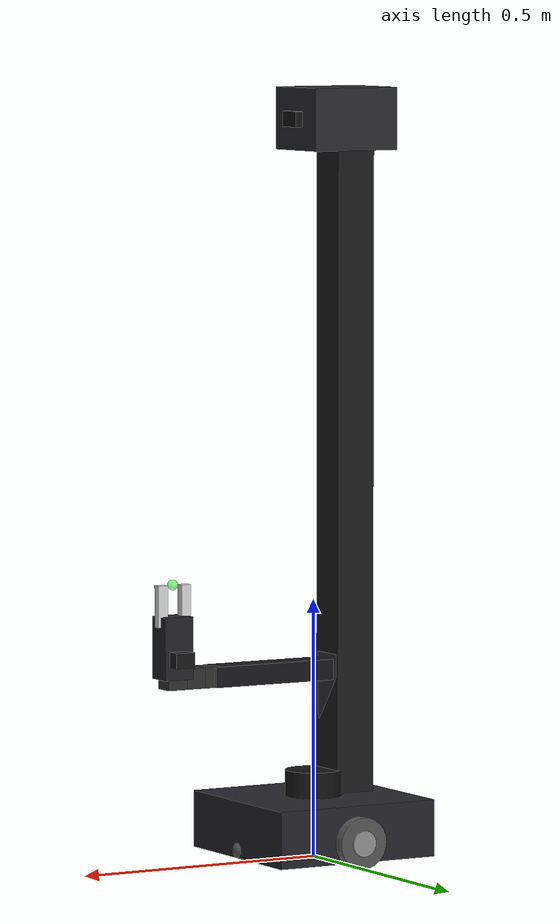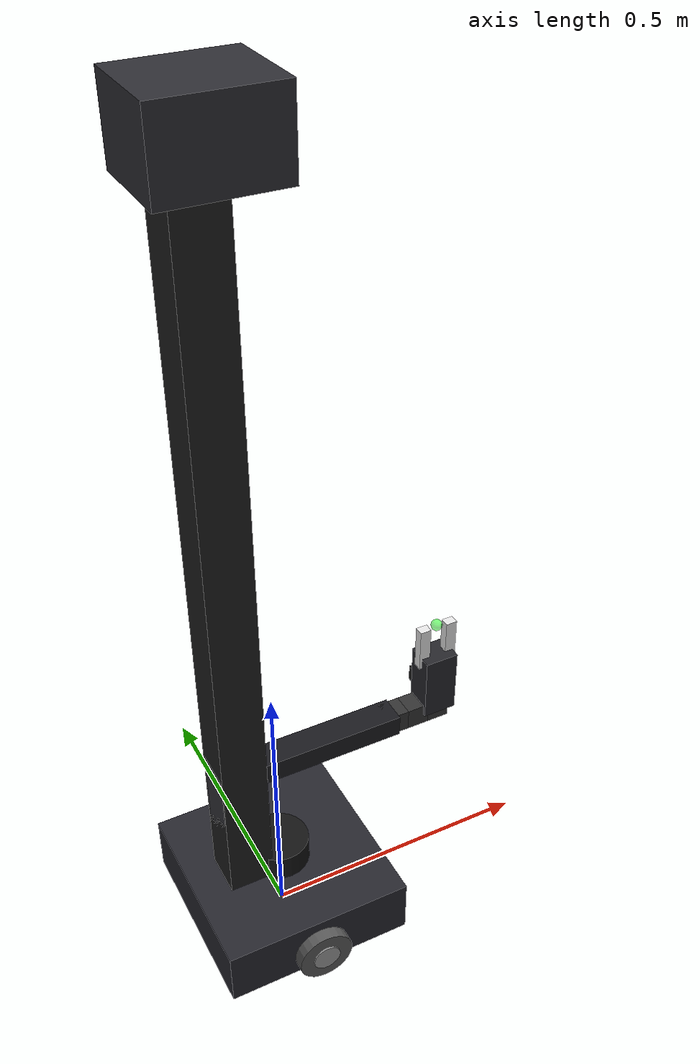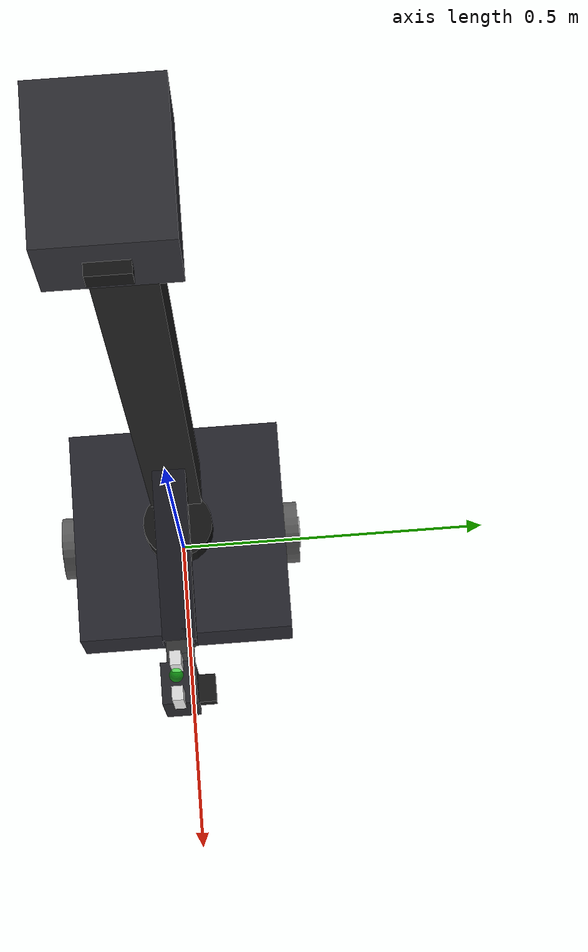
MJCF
<mujoco model="stretch3">

  <compiler angle="radian" autolimits="true"/>

  <option
    timestep="0.005"
    integrator="implicitfast"
    impratio="10"
    cone="elliptic"
    noslip_iterations="3">
    <flag multiccd="enable"/>
  </option>

  <default>
    <default class="stretch">

      <!-- Base geoms: proper mass, no zero-mass defaults -->
      <geom solref="0.02 1" solimp="0.95 0.99 0.001"/>

      <default class="wheel">
        <!-- axis="0 1 0" = roll along Y = forward/backward motion in world frame -->
        <joint type="hinge" axis="0 1 0"
               damping="5" frictionloss="0.5" armature="0.05" stiffness="0"/>
        <!-- kv=50, gear=1: ctrl=omega_wheel directly in rad/s, no gear confusion -->
        <velocity gear="1" kv="50" ctrlrange="-20 20" forcerange="-80 80"/>
      </default>

      <default class="lift">
        <joint type="slide" axis="0 0 1" damping="35" stiffness="0.03"
               armature="0.01" range="0.0 1.1" frictionloss="1.5"/>
        <general ctrlrange="0.0 1.1" gainprm="400" biasprm="0 -200 -100" forcerange="-70 70"/>
      </default>

      <default class="arm_slide">
        <joint type="slide" axis="1 0 0" damping="50" stiffness="0.02"
               armature="0.01" range="0 0.52" frictionloss="1.5"/>
        <general ctrlrange="0 0.52" gainprm="150" biasprm="0 -100 -10" forcerange="-56 56"/>
      </default>

      <default class="wrist_yaw">
        <joint type="hinge" axis="0 0 -1" range="-1.39 4.42"
               armature="0.01" damping="7" frictionloss="0.1"/>
        <position ctrlrange="-1.39 4.42" kp="20"/>
      </default>

      <default class="wrist_pitch">
        <joint type="hinge" axis="0 1 0" range="-1.57 0.56"
               armature="0.01" damping="2" frictionloss="0.1"/>
        <position ctrlrange="-1.57 0.56" kp="50"/>
      </default>

      <default class="wrist_roll">
        <joint type="hinge" axis="1 0 0" range="-3.14 3.14"
               armature="0.01" damping="2" frictionloss="0.1"/>
        <position ctrlrange="-3.14 3.14" kp="20"/>
      </default>

      <default class="gripper_finger">
        <joint type="slide" axis="0 1 0" range="0 0.06"
               armature="0.01" damping="1"/>
        <position ctrlrange="0 0.06" kp="200"/>
      </default>

      <default class="head_pan">
        <joint type="hinge" axis="0 0 1" range="-4.04 1.73" damping="2"/>
        <position ctrlrange="-4.04 1.73" kp="10"/>
      </default>

      <default class="head_tilt">
        <joint type="hinge" axis="0 1 0" range="-1.53 0.79" damping="2"/>
        <position ctrlrange="-1.53 0.79" kp="10"/>
      </default>

    </default>
  </default>

  <worldbody>
    <body name="base_link" childclass="stretch" pos="0 0 0.065">

      <joint name="base_x"   type="slide" axis="1 0 0" damping="2" frictionloss="0.5"/>
      <joint name="base_y"   type="slide" axis="0 1 0" damping="2" frictionloss="0.5"/>
      <joint name="base_yaw" type="hinge" axis="0 0 1" damping="5" frictionloss="0.5"/>

      <!-- BASE CHASSIS — box approximation, heavy and low -->
      <geom name="base_chassis"
            type="box" size="0.17 0.17 0.055"
            pos="0 0 0"
            mass="14.0"
            rgba="0.15 0.15 0.18 1"
            friction="0.8 0.05 0.01"
            solref="0.02 1" solimp="0.95 0.99 0.001"/>

      <!-- CASTER — front passive wheel (no joint, just geometry+friction) -->
      <geom name="caster_geom"
            type="sphere" size="0.018"
            pos="0.16 0 -0.04"
            mass="0.1"
            rgba="0.3 0.3 0.3 1"
            condim="1"
            friction="0.01 0.001 0.0001"
            solref="0.02 1" solimp="0.95 0.99 0.001"/>

      <!-- LIDAR bump on top front -->
      <geom name="lidar_bump"
            type="cylinder" size="0.055 0.025"
            pos="0.0 0 0.08"
            mass="0.24"
            rgba="0.08 0.08 0.08 1"
            contype="0" conaffinity="0"/>

      <!-- MAST — tall vertical column, the most visible part of Stretch -->
      <geom name="mast"
            type="box" size="0.04 0.04 0.62"
            pos="-0.07 0.0 0.68"
            mass="1.8"
            rgba="0.12 0.12 0.12 1"
            contype="0" conaffinity="0"/>

      <!-- HEAD — box at top of mast -->
      <geom name="head_box"
            type="box" size="0.09 0.075 0.06"
            pos="-0.05 0 1.36"
            mass="0.8"
            rgba="0.18 0.18 0.2 1"
            contype="0" conaffinity="0"/>

      <!-- RIGHT WHEEL -->
      <body name="link_right_wheel" pos="0 -0.17 -0.015">
        <joint name="joint_right_wheel" class="wheel"/>
        <geom name="right_wheel_geom"
              type="cylinder" size="0.05 0.022"
              euler="1.5708 0 0"
              mass="0.3"
              rgba="0.35 0.35 0.35 1"
              condim="6"
              friction="1.5 0.05 0.005"
              solref="0.01 1" solimp="0.99 0.999 0.001"/>
        <!-- Hub -->
        <geom type="cylinder" size="0.025 0.025" euler="1.5708 0 0"
              mass="0.05" rgba="0.6 0.6 0.6 1" contype="0" conaffinity="0"/>
      </body>

      <!-- LEFT WHEEL -->
      <body name="link_left_wheel" pos="0 0.17 -0.015">
        <joint name="joint_left_wheel" class="wheel"/>
        <geom name="left_wheel_geom"
              type="cylinder" size="0.05 0.022"
              euler="1.5708 0 0"
              mass="0.3"
              rgba="0.35 0.35 0.35 1"
              condim="6"
              friction="1.5 0.05 0.005"
              solref="0.01 1" solimp="0.99 0.999 0.001"/>
        <geom type="cylinder" size="0.025 0.025" euler="1.5708 0 0"
              mass="0.05" rgba="0.6 0.6 0.6 1" contype="0" conaffinity="0"/>
      </body>

      <!-- LIFT CARRIAGE — slides up the mast -->
      <body name="link_lift" pos="-0.07 0 0.25">
        <joint name="joint_lift" class="lift"/>
        <geom name="lift_carriage"
              type="box" size="0.04 0.035 0.08"
              mass="1.5"
              rgba="0.2 0.2 0.22 1"
              contype="0" conaffinity="0"/>

        <!-- ARM — extends horizontally from lift -->
        <body name="link_arm" pos="0.04 0 0.05">
          <joint name="joint_arm_extend" class="arm_slide"/>
          <geom name="arm_tube"
                type="box" size="0.13 0.025 0.02"
                pos="0.13 0 0"
                mass="0.8"
                rgba="0.1 0.1 0.12 1"
                contype="0" conaffinity="0"/>

          <!-- WRIST + GRIPPER assembly at end of arm -->
          <body name="link_wrist_yaw" pos="0.26 0 0">
            <joint name="joint_wrist_yaw" class="wrist_yaw"/>
            <geom type="box" size="0.02 0.02 0.02" mass="0.15"
                  rgba="0.2 0.2 0.2 1" contype="0" conaffinity="0"/>

            <body name="link_wrist_pitch" pos="0.04 0 0">
              <joint name="joint_wrist_pitch" class="wrist_pitch"/>
              <geom type="box" size="0.02 0.02 0.02" mass="0.12"
                    rgba="0.2 0.2 0.2 1" contype="0" conaffinity="0"/>

              <body name="link_wrist_roll" pos="0.04 0 0">
                <joint name="joint_wrist_roll" class="wrist_roll"/>
                <geom type="box" size="0.02 0.02 0.02" mass="0.12"
                      rgba="0.2 0.2 0.2 1" contype="0" conaffinity="0"/>

                <!-- Gripper body -->
                <geom name="gripper_body"
                      type="box" size="0.03 0.025 0.06"
                      pos="0 0 0.06"
                      mass="0.3"
                      rgba="0.15 0.15 0.17 1"/>

                <!-- Left finger -->
                <body name="link_finger_left" pos="0.025 0 0.14">
                  <joint name="joint_finger_left" class="gripper_finger"/>
                  <geom type="box" size="0.01 0.008 0.04"
                        pos="0 0 0"
                        mass="0.05"
                        rgba="0.9 0.9 0.9 1"
                        friction="2 0.02 0.01"/>
                </body>

                <!-- Right finger -->
                <body name="link_finger_right" pos="-0.025 0 0.14">
                  <joint name="joint_finger_right" class="gripper_finger"/>
                  <geom type="box" size="0.01 0.008 0.04"
                        pos="0 0 0"
                        mass="0.05"
                        rgba="0.9 0.9 0.9 1"
                        friction="2 0.02 0.01"/>
                </body>

                <!-- Grasp center site -->
                <site name="grasp_center" pos="0 0 0.18" size="0.01" rgba="0 1 0 0.5"/>

                <!-- D405 camera stub -->
                <geom name="d405_body"
                      type="box" size="0.02 0.015 0.015"
                      pos="0 0.035 0.04"
                      mass="0.05"
                      rgba="0.1 0.1 0.1 1"
                      contype="0" conaffinity="0"/>
                <camera name="d405_rgb" pos="0 0.04 0.04" euler="0 1.5708 0" fovy="58"/>
              </body>
            </body>
          </body>
        </body>
      </body>

      <!-- HEAD PAN -->
      <body name="link_head_pan" pos="-0.05 0 1.36">
        <joint name="joint_head_pan" class="head_pan"/>
        <geom type="box" size="0.05 0.05 0.04" mass="0.15"
              rgba="0.18 0.18 0.2 1" contype="0" conaffinity="0"/>

        <!-- HEAD TILT -->
        <body name="link_head_tilt" pos="0 0 0">
          <joint name="joint_head_tilt" class="head_tilt"/>
          <geom type="box" size="0.04 0.04 0.03" mass="0.13"
                rgba="0.18 0.18 0.2 1" contype="0" conaffinity="0"/>

          <!-- D435i camera on head -->
          <geom name="d435i_body"
                type="box" size="0.045 0.025 0.015"
                pos="0.06 0 0"
                mass="0.07"
                rgba="0.08 0.08 0.08 1"
                contype="0" conaffinity="0"/>
          <camera name="d435i_camera_rgb"
                  pos="0.09 0.015 0"
                  euler="0 1.5708 0"
                  fovy="58"/>
          <camera name="d435i_camera_depth"
                  pos="0.09 -0.015 0"
                  euler="0 1.5708 0"
                  fovy="58"/>
        </body>
      </body>

      <!-- IMU site -->
      <site name="base_imu" pos="0 0 0.1"/>

    </body>
  </worldbody>

  <actuator>
    <!--
      Wheels: gear=1, so ctrl = desired_joint_angular_velocity (rad/s)
      For v m/s forward: ctrl = v / wheel_radius = v / 0.05 = 20*v
      Max ctrl = 20 means max ~1 m/s forward
    -->
    <velocity name="left_wheel_vel"  joint="joint_left_wheel"  class="wheel"/>
    <velocity name="right_wheel_vel" joint="joint_right_wheel" class="wheel"/>

    <!-- Arm/body joints -->
    <general  name="lift"        joint="joint_lift"        class="lift"/>
    <general  name="arm"         joint="joint_arm_extend"  class="arm_slide"/>
    <position name="wrist_yaw"   joint="joint_wrist_yaw"   class="wrist_yaw"/>
    <position name="wrist_pitch" joint="joint_wrist_pitch"  class="wrist_pitch"/>
    <position name="wrist_roll"  joint="joint_wrist_roll"   class="wrist_roll"/>
    <position name="gripper"     joint="joint_finger_left"  class="gripper_finger"/>
    <position name="head_pan"    joint="joint_head_pan"     class="head_pan"/>
    <position name="head_tilt"   joint="joint_head_tilt"    class="head_tilt"/>
  </actuator>

  <sensor>
    <gyro        name="base_gyro"  site="base_imu"/>
    <accelerometer name="base_accel" site="base_imu"/>
  </sensor>

  <keyframe>
    <!-- home: wheels=0, lift=0.6, arm=0.1, wrist_yaw=0, wrist_pitch=0, wrist_roll=0, gripper=0.03, head_pan=0, head_tilt=0 -->
    <key name="home" ctrl="0 0 0.6 0.1 0 0 0 0.03 0 0"/>
    <key name="stow" ctrl="0 0 0.23 0 0 0 0 0 0 0"/>
  </keyframe>

</mujoco>
